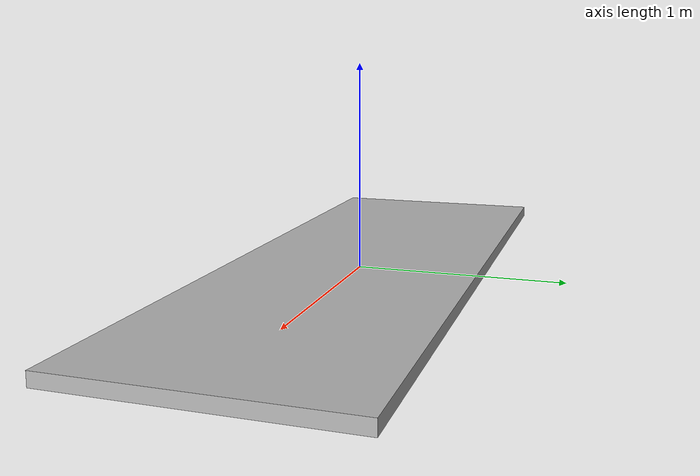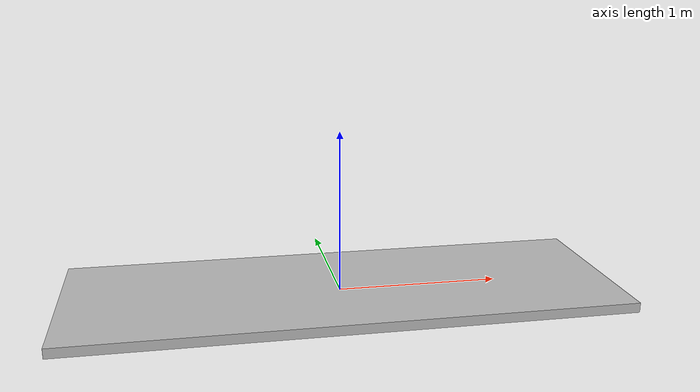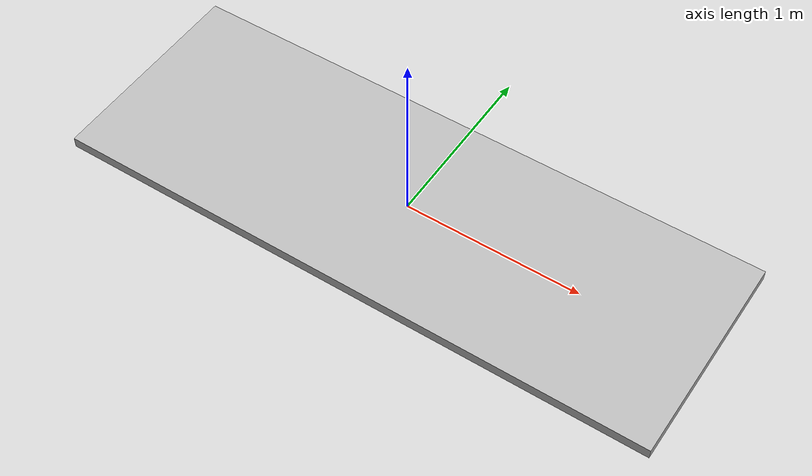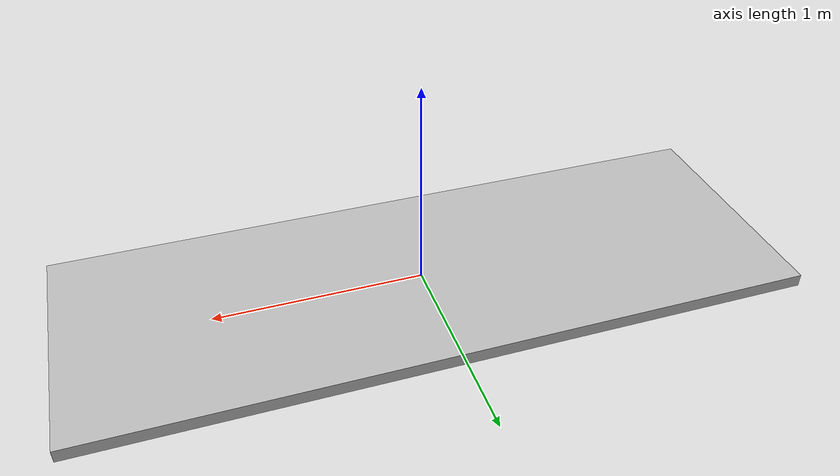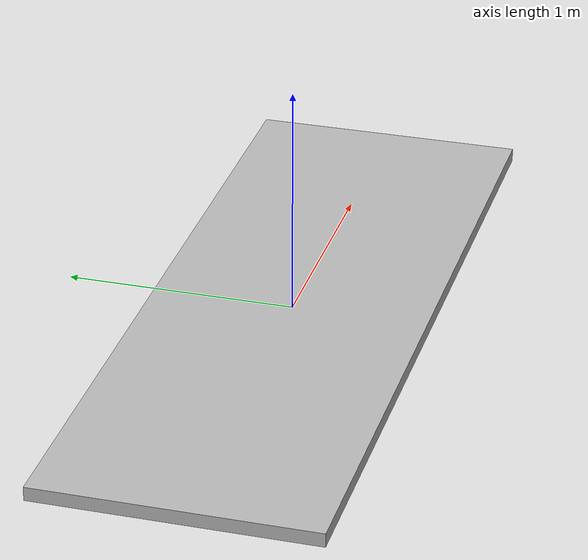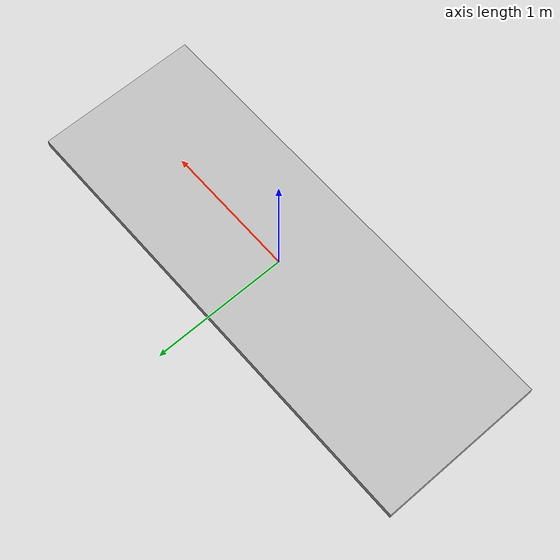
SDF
<?xml version="1.0" ?>
<sdf version="1.5">
  <model name="indoorfloor_3.4m">
    <static>true</static>
    <link name="link">
      <pose>0 0 0 0 0 0</pose>
      <collision name="collision">
        <geometry>
          <box>
            <size>3.4 1.2 0.06</size>
          </box>
        </geometry>
      </collision>
      <visual name="visual">
        <cast_shadows>false</cast_shadows>
        <geometry>
          <box>
            <size>3.4 1.2 0.06</size>
          </box>
        </geometry>
        <material>
          <script>
            <uri>model://indoorfloor_3.4m/materials/scripts</uri>
            <uri>model://indoorfloor_3.4m/materials/textures</uri>
            <name>vrc/indoorfloor_3.4m</name>
          </script>
        </material>
      </visual>
    </link>
  </model>
</sdf>
